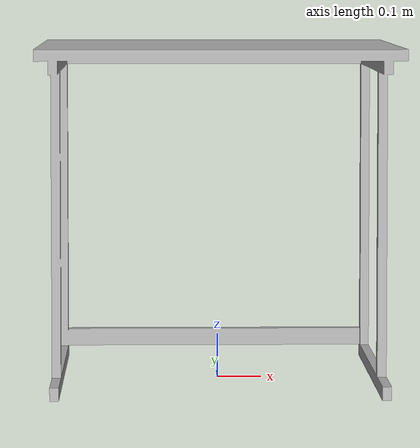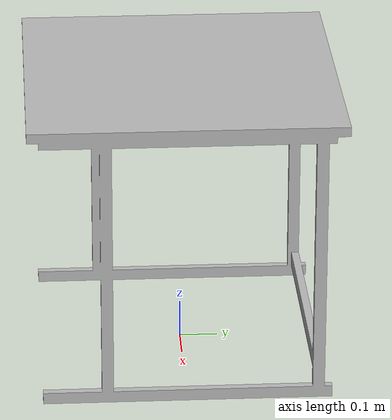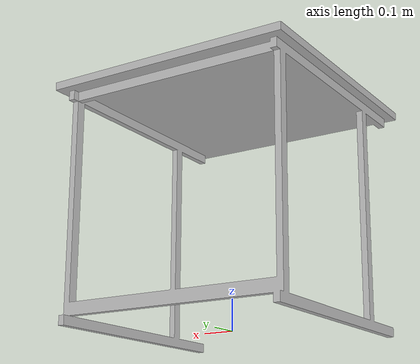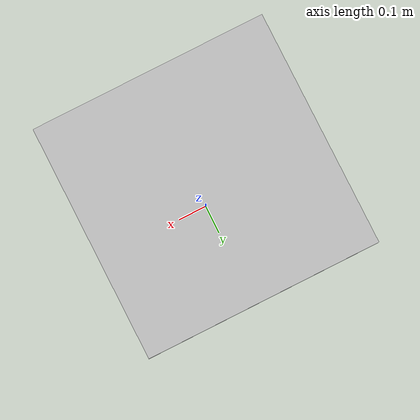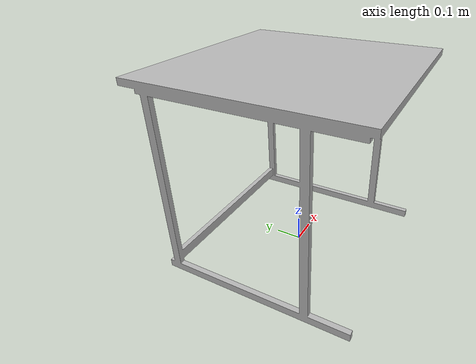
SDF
<?xml version="1.0"?>
<sdf version="1.4">
<model name="stul_80">
	<pose>0 0 0 0 0 0</pose>
	<static>true</static>
	<link name="stul_80_collision">
		<collision name="stul_80_collision">
		<geometry>
			<mesh>
				<uri>model://stul_80/meshes/model.dae</uri>

			</mesh>
		</geometry>
		</collision>
	<visual name="stul_80_mesh">
	<cast_shadows>false</cast_shadows>
		<geometry>
			<mesh>
				<uri> model://stul_80/meshes/model.dae</uri>

			</mesh>
		</geometry>
		<material>
		<script>
			<uri> model://stul_80/material/scripts</uri>
			<uri> model://stul_80/material/textures</uri>
			<name>stul_80/Diffuse</name>
		</script>
		</material>

	</visual>
</link>
</model>
</sdf>
